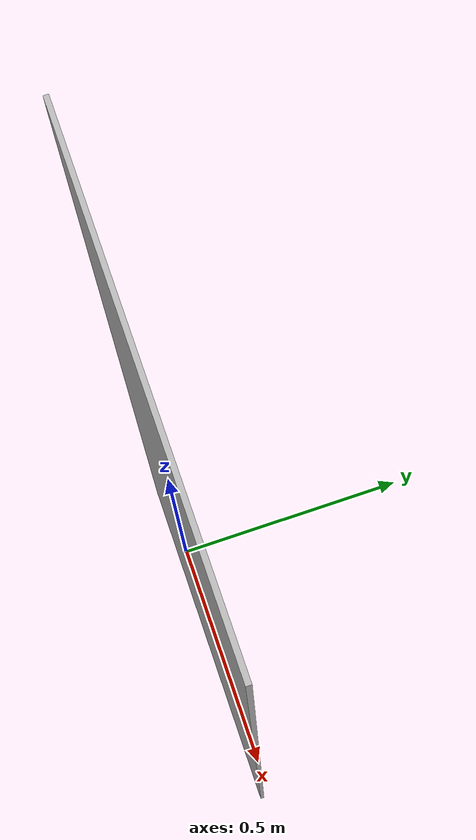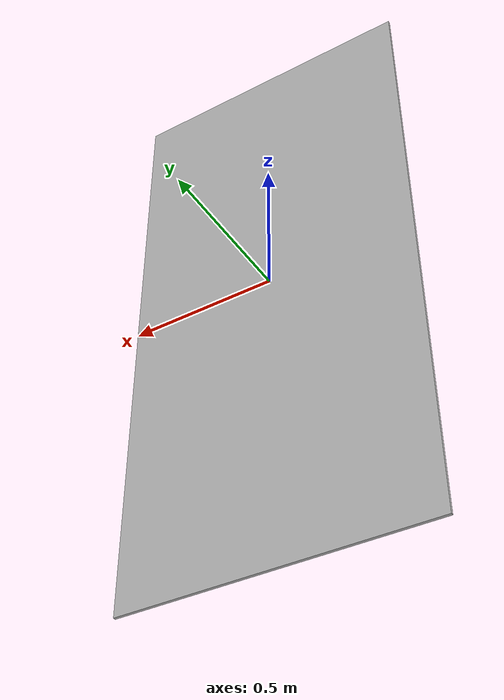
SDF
<?xml version="1.0" ?>
<sdf version="1.7">
    <model name='target_swjtu'>
      <static>true</static>
      <link name="target_swjtu">
        <pose frame=''> 0.0 0.0 0.0 0.0 0.0 0.0</pose>
        <visual name="visual">
            <cast_shadows>false</cast_shadows>
            <geometry>
              <box>
                <size>1 0.01 2</size>
              </box>
            </geometry>
            <material>
              <script>
                <uri>model://yundrone_swjtu/yundrone_swjtu.material</uri>
                <name>yundrone_swjtu</name>
              </script>
            </material>
        </visual>
      </link>
    </model>
</sdf>
